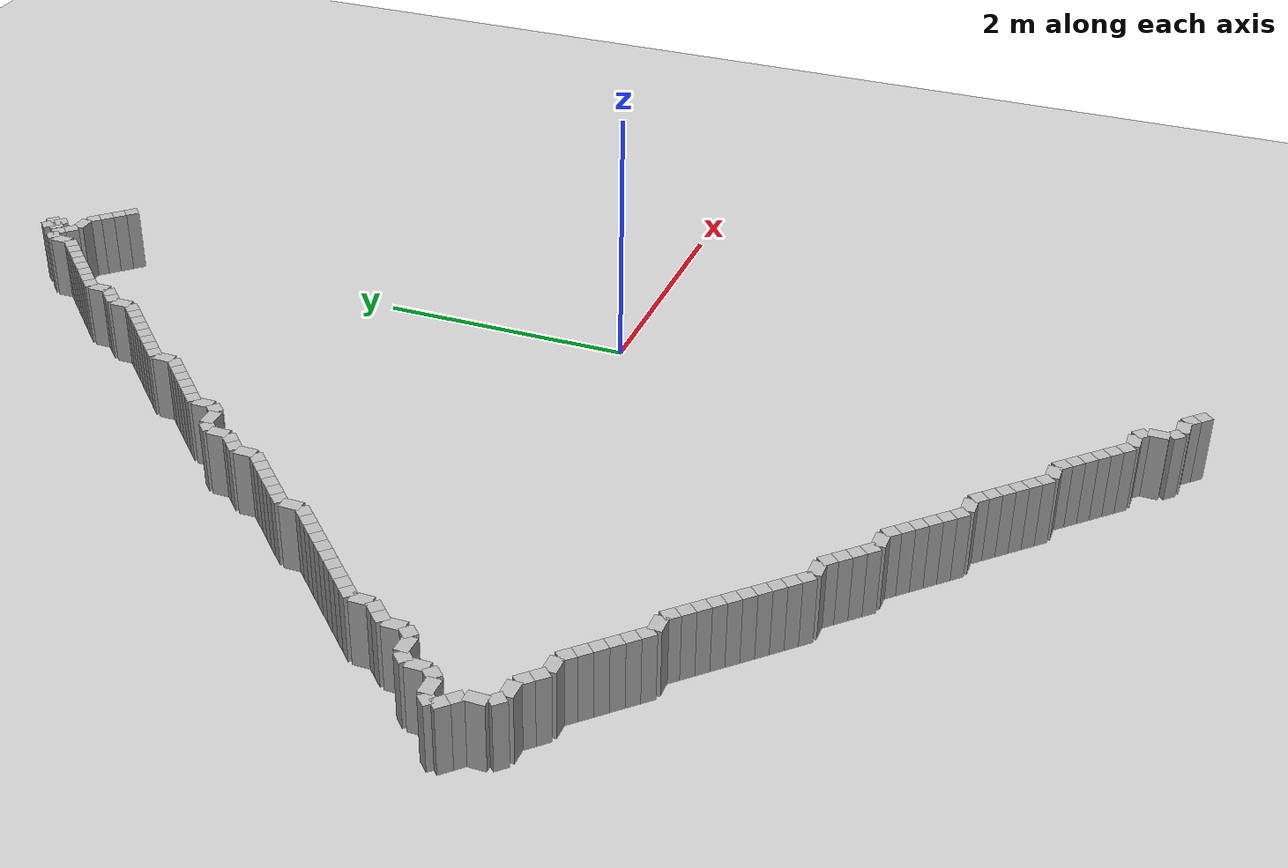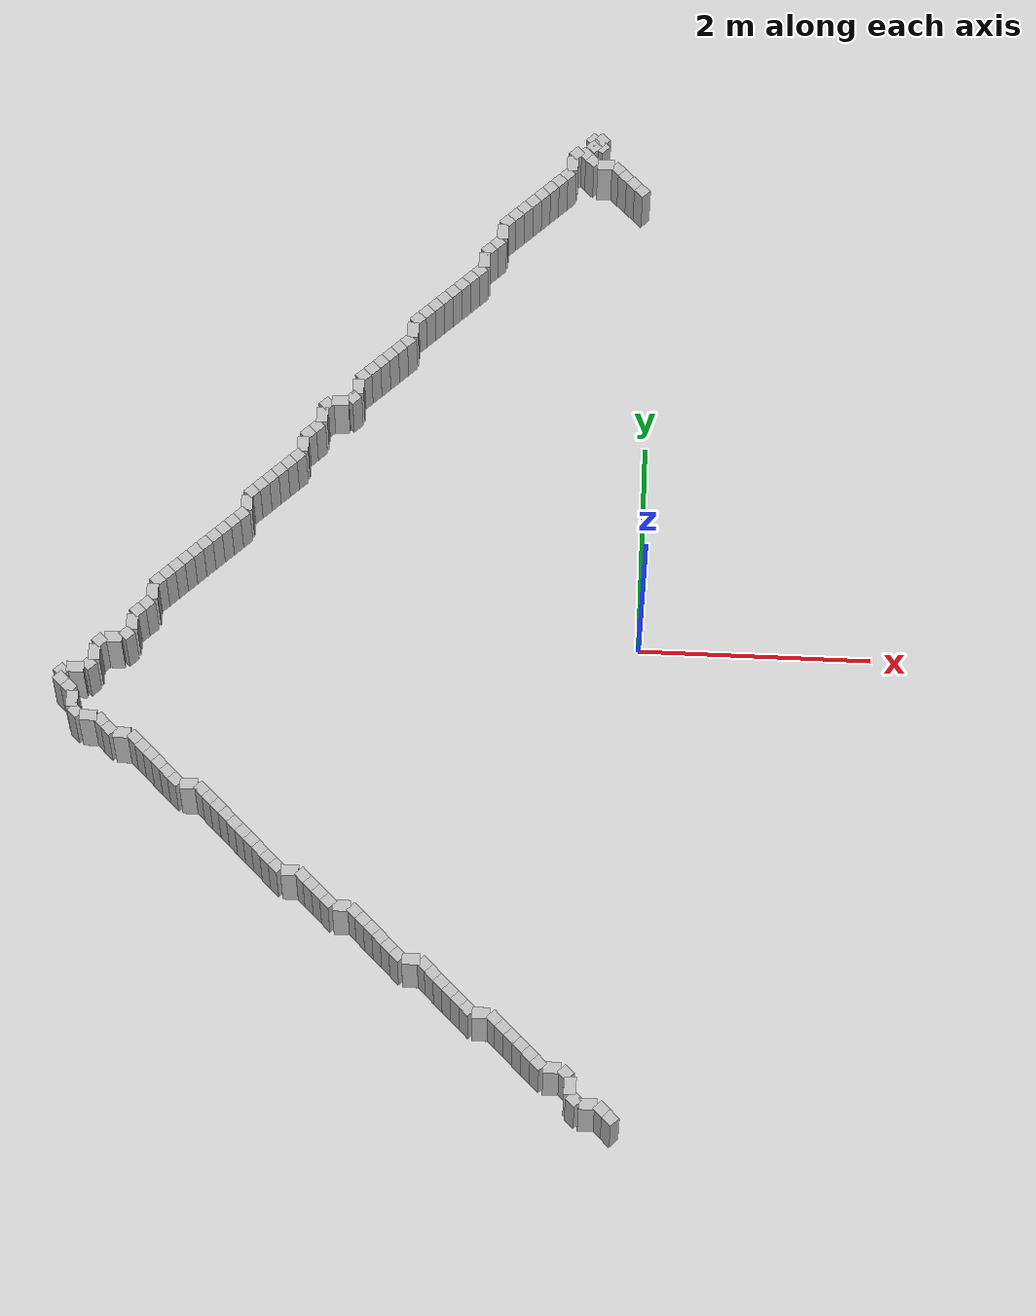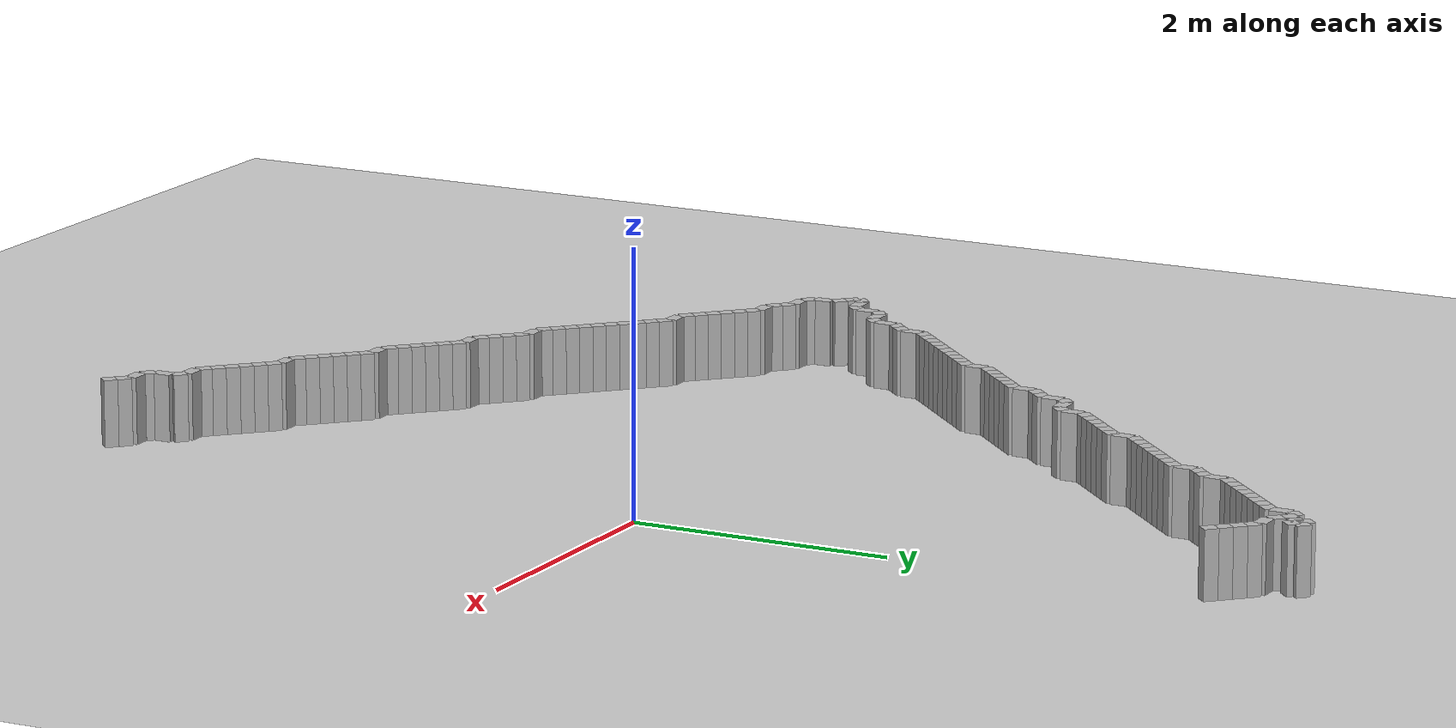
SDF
<sdf version="1.6">
 <world name="default">
  <include><uri>model://ground_plane</uri></include>
  <include><uri>model://sun</uri></include>
  <model name="wall_7">
   <static>true</static>
   <pose>-0.1125 -4.4625 0 0 0 2.3562</pose>
   <link name="link">
    <visual name="vis"><geometry><box><size>0.1061 0.10 1.00</size></box></geometry></visual>
    <collision name="col"><geometry><box><size>0.1061 0.10 1.00</size></box></geometry></collision>
   </link>
  </model>
  <model name="wall_8">
   <static>true</static>
   <pose>-0.1875 -4.3875 0 0 0 2.3562</pose>
   <link name="link">
    <visual name="vis"><geometry><box><size>0.1061 0.10 1.00</size></box></geometry></visual>
    <collision name="col"><geometry><box><size>0.1061 0.10 1.00</size></box></geometry></collision>
   </link>
  </model>
  <model name="wall_9">
   <static>true</static>
   <pose>-0.3000 -4.3500 0 0 0 3.1416</pose>
   <link name="link">
    <visual name="vis"><geometry><box><size>0.1500 0.10 1.00</size></box></geometry></visual>
    <collision name="col"><geometry><box><size>0.1500 0.10 1.00</size></box></geometry></collision>
   </link>
  </model>
  <model name="wall_10">
   <static>true</static>
   <pose>-0.4125 -4.3125 0 0 0 2.3562</pose>
   <link name="link">
    <visual name="vis"><geometry><box><size>0.1061 0.10 1.00</size></box></geometry></visual>
    <collision name="col"><geometry><box><size>0.1061 0.10 1.00</size></box></geometry></collision>
   </link>
  </model>
  <model name="wall_11">
   <static>true</static>
   <pose>-0.4500 -4.2000 0 0 0 1.5708</pose>
   <link name="link">
    <visual name="vis"><geometry><box><size>0.1500 0.10 1.00</size></box></geometry></visual>
    <collision name="col"><geometry><box><size>0.1500 0.10 1.00</size></box></geometry></collision>
   </link>
  </model>
  <model name="wall_12">
   <static>true</static>
   <pose>-0.4875 -4.0875 0 0 0 2.3562</pose>
   <link name="link">
    <visual name="vis"><geometry><box><size>0.1061 0.10 1.00</size></box></geometry></visual>
    <collision name="col"><geometry><box><size>0.1061 0.10 1.00</size></box></geometry></collision>
   </link>
  </model>
  <model name="wall_13">
   <static>true</static>
   <pose>-0.6000 -4.0500 0 0 0 3.1416</pose>
   <link name="link">
    <visual name="vis"><geometry><box><size>0.1500 0.10 1.00</size></box></geometry></visual>
    <collision name="col"><geometry><box><size>0.1500 0.10 1.00</size></box></geometry></collision>
   </link>
  </model>
  <model name="wall_14">
   <static>true</static>
   <pose>-0.7125 -4.0125 0 0 0 2.3562</pose>
   <link name="link">
    <visual name="vis"><geometry><box><size>0.1061 0.10 1.00</size></box></geometry></visual>
    <collision name="col"><geometry><box><size>0.1061 0.10 1.00</size></box></geometry></collision>
   </link>
  </model>
  <model name="wall_15">
   <static>true</static>
   <pose>-0.7875 -3.9375 0 0 0 2.3562</pose>
   <link name="link">
    <visual name="vis"><geometry><box><size>0.1061 0.10 1.00</size></box></geometry></visual>
    <collision name="col"><geometry><box><size>0.1061 0.10 1.00</size></box></geometry></collision>
   </link>
  </model>
  <model name="wall_16">
   <static>true</static>
   <pose>-0.8625 -3.8625 0 0 0 2.3562</pose>
   <link name="link">
    <visual name="vis"><geometry><box><size>0.1061 0.10 1.00</size></box></geometry></visual>
    <collision name="col"><geometry><box><size>0.1061 0.10 1.00</size></box></geometry></collision>
   </link>
  </model>
  <model name="wall_17">
   <static>true</static>
   <pose>-0.9375 -3.7875 0 0 0 2.3562</pose>
   <link name="link">
    <visual name="vis"><geometry><box><size>0.1061 0.10 1.00</size></box></geometry></visual>
    <collision name="col"><geometry><box><size>0.1061 0.10 1.00</size></box></geometry></collision>
   </link>
  </model>
  <model name="wall_18">
   <static>true</static>
   <pose>-1.0125 -3.7125 0 0 0 2.3562</pose>
   <link name="link">
    <visual name="vis"><geometry><box><size>0.1061 0.10 1.00</size></box></geometry></visual>
    <collision name="col"><geometry><box><size>0.1061 0.10 1.00</size></box></geometry></collision>
   </link>
  </model>
  <model name="wall_19">
   <static>true</static>
   <pose>-1.0875 -3.6375 0 0 0 2.3562</pose>
   <link name="link">
    <visual name="vis"><geometry><box><size>0.1061 0.10 1.00</size></box></geometry></visual>
    <collision name="col"><geometry><box><size>0.1061 0.10 1.00</size></box></geometry></collision>
   </link>
  </model>
  <model name="wall_20">
   <static>true</static>
   <pose>-1.2000 -3.6000 0 0 0 3.1416</pose>
   <link name="link">
    <visual name="vis"><geometry><box><size>0.1500 0.10 1.00</size></box></geometry></visual>
    <collision name="col"><geometry><box><size>0.1500 0.10 1.00</size></box></geometry></collision>
   </link>
  </model>
  <model name="wall_21">
   <static>true</static>
   <pose>-1.3125 -3.5625 0 0 0 2.3562</pose>
   <link name="link">
    <visual name="vis"><geometry><box><size>0.1061 0.10 1.00</size></box></geometry></visual>
    <collision name="col"><geometry><box><size>0.1061 0.10 1.00</size></box></geometry></collision>
   </link>
  </model>
  <model name="wall_22">
   <static>true</static>
   <pose>-1.3875 -3.4875 0 0 0 2.3562</pose>
   <link name="link">
    <visual name="vis"><geometry><box><size>0.1061 0.10 1.00</size></box></geometry></visual>
    <collision name="col"><geometry><box><size>0.1061 0.10 1.00</size></box></geometry></collision>
   </link>
  </model>
  <model name="wall_23">
   <static>true</static>
   <pose>-1.4625 -3.4125 0 0 0 2.3562</pose>
   <link name="link">
    <visual name="vis"><geometry><box><size>0.1061 0.10 1.00</size></box></geometry></visual>
    <collision name="col"><geometry><box><size>0.1061 0.10 1.00</size></box></geometry></collision>
   </link>
  </model>
  <model name="wall_24">
   <static>true</static>
   <pose>-1.5375 -3.3375 0 0 0 2.3562</pose>
   <link name="link">
    <visual name="vis"><geometry><box><size>0.1061 0.10 1.00</size></box></geometry></visual>
    <collision name="col"><geometry><box><size>0.1061 0.10 1.00</size></box></geometry></collision>
   </link>
  </model>
  <model name="wall_25">
   <static>true</static>
   <pose>-1.6125 -3.2625 0 0 0 2.3562</pose>
   <link name="link">
    <visual name="vis"><geometry><box><size>0.1061 0.10 1.00</size></box></geometry></visual>
    <collision name="col"><geometry><box><size>0.1061 0.10 1.00</size></box></geometry></collision>
   </link>
  </model>
  <model name="wall_26">
   <static>true</static>
   <pose>-1.6875 -3.1875 0 0 0 2.3562</pose>
   <link name="link">
    <visual name="vis"><geometry><box><size>0.1061 0.10 1.00</size></box></geometry></visual>
    <collision name="col"><geometry><box><size>0.1061 0.10 1.00</size></box></geometry></collision>
   </link>
  </model>
  <model name="wall_27">
   <static>true</static>
   <pose>-1.8000 -3.1500 0 0 0 3.1416</pose>
   <link name="link">
    <visual name="vis"><geometry><box><size>0.1500 0.10 1.00</size></box></geometry></visual>
    <collision name="col"><geometry><box><size>0.1500 0.10 1.00</size></box></geometry></collision>
   </link>
  </model>
  <model name="wall_28">
   <static>true</static>
   <pose>-1.9125 -3.1125 0 0 0 2.3562</pose>
   <link name="link">
    <visual name="vis"><geometry><box><size>0.1061 0.10 1.00</size></box></geometry></visual>
    <collision name="col"><geometry><box><size>0.1061 0.10 1.00</size></box></geometry></collision>
   </link>
  </model>
  <model name="wall_29">
   <static>true</static>
   <pose>-1.9875 -3.0375 0 0 0 2.3562</pose>
   <link name="link">
    <visual name="vis"><geometry><box><size>0.1061 0.10 1.00</size></box></geometry></visual>
    <collision name="col"><geometry><box><size>0.1061 0.10 1.00</size></box></geometry></collision>
   </link>
  </model>
  <model name="wall_30">
   <static>true</static>
   <pose>-2.0625 -2.9625 0 0 0 2.3562</pose>
   <link name="link">
    <visual name="vis"><geometry><box><size>0.1061 0.10 1.00</size></box></geometry></visual>
    <collision name="col"><geometry><box><size>0.1061 0.10 1.00</size></box></geometry></collision>
   </link>
  </model>
  <model name="wall_31">
   <static>true</static>
   <pose>-2.1375 -2.8875 0 0 0 2.3562</pose>
   <link name="link">
    <visual name="vis"><geometry><box><size>0.1061 0.10 1.00</size></box></geometry></visual>
    <collision name="col"><geometry><box><size>0.1061 0.10 1.00</size></box></geometry></collision>
   </link>
  </model>
  <model name="wall_32">
   <static>true</static>
   <pose>-2.2125 -2.8125 0 0 0 2.3562</pose>
   <link name="link">
    <visual name="vis"><geometry><box><size>0.1061 0.10 1.00</size></box></geometry></visual>
    <collision name="col"><geometry><box><size>0.1061 0.10 1.00</size></box></geometry></collision>
   </link>
  </model>
  <model name="wall_33">
   <static>true</static>
   <pose>-2.2875 -2.7375 0 0 0 2.3562</pose>
   <link name="link">
    <visual name="vis"><geometry><box><size>0.1061 0.10 1.00</size></box></geometry></visual>
    <collision name="col"><geometry><box><size>0.1061 0.10 1.00</size></box></geometry></collision>
   </link>
  </model>
  <model name="wall_34">
   <static>true</static>
   <pose>-2.4000 -2.7000 0 0 0 3.1416</pose>
   <link name="link">
    <visual name="vis"><geometry><box><size>0.1500 0.10 1.00</size></box></geometry></visual>
    <collision name="col"><geometry><box><size>0.1500 0.10 1.00</size></box></geometry></collision>
   </link>
  </model>
  <model name="wall_35">
   <static>true</static>
   <pose>-2.5125 -2.6625 0 0 0 2.3562</pose>
   <link name="link">
    <visual name="vis"><geometry><box><size>0.1061 0.10 1.00</size></box></geometry></visual>
    <collision name="col"><geometry><box><size>0.1061 0.10 1.00</size></box></geometry></collision>
   </link>
  </model>
  <model name="wall_36">
   <static>true</static>
   <pose>-2.5875 -2.5875 0 0 0 2.3562</pose>
   <link name="link">
    <visual name="vis"><geometry><box><size>0.1061 0.10 1.00</size></box></geometry></visual>
    <collision name="col"><geometry><box><size>0.1061 0.10 1.00</size></box></geometry></collision>
   </link>
  </model>
  <model name="wall_37">
   <static>true</static>
   <pose>-2.6625 -2.5125 0 0 0 2.3562</pose>
   <link name="link">
    <visual name="vis"><geometry><box><size>0.1061 0.10 1.00</size></box></geometry></visual>
    <collision name="col"><geometry><box><size>0.1061 0.10 1.00</size></box></geometry></collision>
   </link>
  </model>
  <model name="wall_38">
   <static>true</static>
   <pose>-2.7375 -2.4375 0 0 0 2.3562</pose>
   <link name="link">
    <visual name="vis"><geometry><box><size>0.1061 0.10 1.00</size></box></geometry></visual>
    <collision name="col"><geometry><box><size>0.1061 0.10 1.00</size></box></geometry></collision>
   </link>
  </model>
  <model name="wall_39">
   <static>true</static>
   <pose>-2.8500 -2.4000 0 0 0 3.1416</pose>
   <link name="link">
    <visual name="vis"><geometry><box><size>0.1500 0.10 1.00</size></box></geometry></visual>
    <collision name="col"><geometry><box><size>0.1500 0.10 1.00</size></box></geometry></collision>
   </link>
  </model>
  <model name="wall_40">
   <static>true</static>
   <pose>-2.9625 -2.3625 0 0 0 2.3562</pose>
   <link name="link">
    <visual name="vis"><geometry><box><size>0.1061 0.10 1.00</size></box></geometry></visual>
    <collision name="col"><geometry><box><size>0.1061 0.10 1.00</size></box></geometry></collision>
   </link>
  </model>
  <model name="wall_41">
   <static>true</static>
   <pose>-3.0375 -2.2875 0 0 0 2.3562</pose>
   <link name="link">
    <visual name="vis"><geometry><box><size>0.1061 0.10 1.00</size></box></geometry></visual>
    <collision name="col"><geometry><box><size>0.1061 0.10 1.00</size></box></geometry></collision>
   </link>
  </model>
  <model name="wall_42">
   <static>true</static>
   <pose>-3.1125 -2.2125 0 0 0 2.3562</pose>
   <link name="link">
    <visual name="vis"><geometry><box><size>0.1061 0.10 1.00</size></box></geometry></visual>
    <collision name="col"><geometry><box><size>0.1061 0.10 1.00</size></box></geometry></collision>
   </link>
  </model>
  <model name="wall_43">
   <static>true</static>
   <pose>-3.1875 -2.1375 0 0 0 2.3562</pose>
   <link name="link">
    <visual name="vis"><geometry><box><size>0.1061 0.10 1.00</size></box></geometry></visual>
    <collision name="col"><geometry><box><size>0.1061 0.10 1.00</size></box></geometry></collision>
   </link>
  </model>
  <model name="wall_44">
   <static>true</static>
   <pose>-3.2625 -2.0625 0 0 0 2.3562</pose>
   <link name="link">
    <visual name="vis"><geometry><box><size>0.1061 0.10 1.00</size></box></geometry></visual>
    <collision name="col"><geometry><box><size>0.1061 0.10 1.00</size></box></geometry></collision>
   </link>
  </model>
  <model name="wall_45">
   <static>true</static>
   <pose>-3.3375 -1.9875 0 0 0 2.3562</pose>
   <link name="link">
    <visual name="vis"><geometry><box><size>0.1061 0.10 1.00</size></box></geometry></visual>
    <collision name="col"><geometry><box><size>0.1061 0.10 1.00</size></box></geometry></collision>
   </link>
  </model>
  <model name="wall_46">
   <static>true</static>
   <pose>-3.4125 -1.9125 0 0 0 2.3562</pose>
   <link name="link">
    <visual name="vis"><geometry><box><size>0.1061 0.10 1.00</size></box></geometry></visual>
    <collision name="col"><geometry><box><size>0.1061 0.10 1.00</size></box></geometry></collision>
   </link>
  </model>
  <model name="wall_47">
   <static>true</static>
   <pose>-3.4875 -1.8375 0 0 0 2.3562</pose>
   <link name="link">
    <visual name="vis"><geometry><box><size>0.1061 0.10 1.00</size></box></geometry></visual>
    <collision name="col"><geometry><box><size>0.1061 0.10 1.00</size></box></geometry></collision>
   </link>
  </model>
  <model name="wall_48">
   <static>true</static>
   <pose>-3.5625 -1.7625 0 0 0 2.3562</pose>
   <link name="link">
    <visual name="vis"><geometry><box><size>0.1061 0.10 1.00</size></box></geometry></visual>
    <collision name="col"><geometry><box><size>0.1061 0.10 1.00</size></box></geometry></collision>
   </link>
  </model>
  <model name="wall_49">
   <static>true</static>
   <pose>-3.6375 -1.6875 0 0 0 2.3562</pose>
   <link name="link">
    <visual name="vis"><geometry><box><size>0.1061 0.10 1.00</size></box></geometry></visual>
    <collision name="col"><geometry><box><size>0.1061 0.10 1.00</size></box></geometry></collision>
   </link>
  </model>
  <model name="wall_50">
   <static>true</static>
   <pose>-3.7500 -1.6500 0 0 0 3.1416</pose>
   <link name="link">
    <visual name="vis"><geometry><box><size>0.1500 0.10 1.00</size></box></geometry></visual>
    <collision name="col"><geometry><box><size>0.1500 0.10 1.00</size></box></geometry></collision>
   </link>
  </model>
  <model name="wall_51">
   <static>true</static>
   <pose>-3.8625 -1.6125 0 0 0 2.3562</pose>
   <link name="link">
    <visual name="vis"><geometry><box><size>0.1061 0.10 1.00</size></box></geometry></visual>
    <collision name="col"><geometry><box><size>0.1061 0.10 1.00</size></box></geometry></collision>
   </link>
  </model>
  <model name="wall_52">
   <static>true</static>
   <pose>-3.9375 -1.5375 0 0 0 2.3562</pose>
   <link name="link">
    <visual name="vis"><geometry><box><size>0.1061 0.10 1.00</size></box></geometry></visual>
    <collision name="col"><geometry><box><size>0.1061 0.10 1.00</size></box></geometry></collision>
   </link>
  </model>
  <model name="wall_53">
   <static>true</static>
   <pose>-4.0125 -1.4625 0 0 0 2.3562</pose>
   <link name="link">
    <visual name="vis"><geometry><box><size>0.1061 0.10 1.00</size></box></geometry></visual>
    <collision name="col"><geometry><box><size>0.1061 0.10 1.00</size></box></geometry></collision>
   </link>
  </model>
  <model name="wall_54">
   <static>true</static>
   <pose>-4.0875 -1.3875 0 0 0 2.3562</pose>
   <link name="link">
    <visual name="vis"><geometry><box><size>0.1061 0.10 1.00</size></box></geometry></visual>
    <collision name="col"><geometry><box><size>0.1061 0.10 1.00</size></box></geometry></collision>
   </link>
  </model>
  <model name="wall_55">
   <static>true</static>
   <pose>-4.1625 -1.3125 0 0 0 2.3562</pose>
   <link name="link">
    <visual name="vis"><geometry><box><size>0.1061 0.10 1.00</size></box></geometry></visual>
    <collision name="col"><geometry><box><size>0.1061 0.10 1.00</size></box></geometry></collision>
   </link>
  </model>
  <model name="wall_56">
   <static>true</static>
   <pose>-4.2375 -1.2375 0 0 0 2.3562</pose>
   <link name="link">
    <visual name="vis"><geometry><box><size>0.1061 0.10 1.00</size></box></geometry></visual>
    <collision name="col"><geometry><box><size>0.1061 0.10 1.00</size></box></geometry></collision>
   </link>
  </model>
  <model name="wall_57">
   <static>true</static>
   <pose>-4.3500 -1.2000 0 0 0 3.1416</pose>
   <link name="link">
    <visual name="vis"><geometry><box><size>0.1500 0.10 1.00</size></box></geometry></visual>
    <collision name="col"><geometry><box><size>0.1500 0.10 1.00</size></box></geometry></collision>
   </link>
  </model>
  <model name="wall_58">
   <static>true</static>
   <pose>-4.4625 -1.1625 0 0 0 2.3562</pose>
   <link name="link">
    <visual name="vis"><geometry><box><size>0.1061 0.10 1.00</size></box></geometry></visual>
    <collision name="col"><geometry><box><size>0.1061 0.10 1.00</size></box></geometry></collision>
   </link>
  </model>
  <model name="wall_59">
   <static>true</static>
   <pose>-4.5375 -1.0875 0 0 0 2.3562</pose>
   <link name="link">
    <visual name="vis"><geometry><box><size>0.1061 0.10 1.00</size></box></geometry></visual>
    <collision name="col"><geometry><box><size>0.1061 0.10 1.00</size></box></geometry></collision>
   </link>
  </model>
  <model name="wall_60">
   <static>true</static>
   <pose>-4.6500 -1.0500 0 0 0 3.1416</pose>
   <link name="link">
    <visual name="vis"><geometry><box><size>0.1500 0.10 1.00</size></box></geometry></visual>
    <collision name="col"><geometry><box><size>0.1500 0.10 1.00</size></box></geometry></collision>
   </link>
  </model>
  <model name="wall_61">
   <static>true</static>
   <pose>-4.7625 -1.0125 0 0 0 2.3562</pose>
   <link name="link">
    <visual name="vis"><geometry><box><size>0.1061 0.10 1.00</size></box></geometry></visual>
    <collision name="col"><geometry><box><size>0.1061 0.10 1.00</size></box></geometry></collision>
   </link>
  </model>
  <model name="wall_62">
   <static>true</static>
   <pose>-4.8000 -0.9000 0 0 0 1.5708</pose>
   <link name="link">
    <visual name="vis"><geometry><box><size>0.1500 0.10 1.00</size></box></geometry></visual>
    <collision name="col"><geometry><box><size>0.1500 0.10 1.00</size></box></geometry></collision>
   </link>
  </model>
  <model name="wall_63">
   <static>true</static>
   <pose>-4.8375 -0.7875 0 0 0 2.3562</pose>
   <link name="link">
    <visual name="vis"><geometry><box><size>0.1061 0.10 1.00</size></box></geometry></visual>
    <collision name="col"><geometry><box><size>0.1061 0.10 1.00</size></box></geometry></collision>
   </link>
  </model>
  <model name="wall_64">
   <static>true</static>
   <pose>-4.9125 -0.7125 0 0 0 2.3562</pose>
   <link name="link">
    <visual name="vis"><geometry><box><size>0.1061 0.10 1.00</size></box></geometry></visual>
    <collision name="col"><geometry><box><size>0.1061 0.10 1.00</size></box></geometry></collision>
   </link>
  </model>
  <model name="wall_65">
   <static>true</static>
   <pose>-4.9125 -0.6375 0 0 0 0.7854</pose>
   <link name="link">
    <visual name="vis"><geometry><box><size>0.1061 0.10 1.00</size></box></geometry></visual>
    <collision name="col"><geometry><box><size>0.1061 0.10 1.00</size></box></geometry></collision>
   </link>
  </model>
  <model name="wall_66">
   <static>true</static>
   <pose>-4.8000 -0.6000 0 0 0 0.0000</pose>
   <link name="link">
    <visual name="vis"><geometry><box><size>0.1500 0.10 1.00</size></box></geometry></visual>
    <collision name="col"><geometry><box><size>0.1500 0.10 1.00</size></box></geometry></collision>
   </link>
  </model>
  <model name="wall_67">
   <static>true</static>
   <pose>-4.6875 -0.5625 0 0 0 0.7854</pose>
   <link name="link">
    <visual name="vis"><geometry><box><size>0.1061 0.10 1.00</size></box></geometry></visual>
    <collision name="col"><geometry><box><size>0.1061 0.10 1.00</size></box></geometry></collision>
   </link>
  </model>
  <model name="wall_68">
   <static>true</static>
   <pose>-4.6500 -0.4500 0 0 0 1.5708</pose>
   <link name="link">
    <visual name="vis"><geometry><box><size>0.1500 0.10 1.00</size></box></geometry></visual>
    <collision name="col"><geometry><box><size>0.1500 0.10 1.00</size></box></geometry></collision>
   </link>
  </model>
  <model name="wall_69">
   <static>true</static>
   <pose>-4.6125 -0.3375 0 0 0 0.7854</pose>
   <link name="link">
    <visual name="vis"><geometry><box><size>0.1061 0.10 1.00</size></box></geometry></visual>
    <collision name="col"><geometry><box><size>0.1061 0.10 1.00</size></box></geometry></collision>
   </link>
  </model>
  <model name="wall_70">
   <static>true</static>
   <pose>-4.5000 -0.3000 0 0 0 0.0000</pose>
   <link name="link">
    <visual name="vis"><geometry><box><size>0.1500 0.10 1.00</size></box></geometry></visual>
    <collision name="col"><geometry><box><size>0.1500 0.10 1.00</size></box></geometry></collision>
   </link>
  </model>
  <model name="wall_71">
   <static>true</static>
   <pose>-4.3875 -0.2625 0 0 0 0.7854</pose>
   <link name="link">
    <visual name="vis"><geometry><box><size>0.1061 0.10 1.00</size></box></geometry></visual>
    <collision name="col"><geometry><box><size>0.1061 0.10 1.00</size></box></geometry></collision>
   </link>
  </model>
  <model name="wall_72">
   <static>true</static>
   <pose>-4.3500 -0.1500 0 0 0 1.5708</pose>
   <link name="link">
    <visual name="vis"><geometry><box><size>0.1500 0.10 1.00</size></box></geometry></visual>
    <collision name="col"><geometry><box><size>0.1500 0.10 1.00</size></box></geometry></collision>
   </link>
  </model>
  <model name="wall_73">
   <static>true</static>
   <pose>-4.3125 -0.0375 0 0 0 0.7854</pose>
   <link name="link">
    <visual name="vis"><geometry><box><size>0.1061 0.10 1.00</size></box></geometry></visual>
    <collision name="col"><geometry><box><size>0.1061 0.10 1.00</size></box></geometry></collision>
   </link>
  </model>
  <model name="wall_74">
   <static>true</static>
   <pose>-4.2375 0.0375 0 0 0 0.7854</pose>
   <link name="link">
    <visual name="vis"><geometry><box><size>0.1061 0.10 1.00</size></box></geometry></visual>
    <collision name="col"><geometry><box><size>0.1061 0.10 1.00</size></box></geometry></collision>
   </link>
  </model>
  <model name="wall_75">
   <static>true</static>
   <pose>-4.2000 0.1500 0 0 0 1.5708</pose>
   <link name="link">
    <visual name="vis"><geometry><box><size>0.1500 0.10 1.00</size></box></geometry></visual>
    <collision name="col"><geometry><box><size>0.1500 0.10 1.00</size></box></geometry></collision>
   </link>
  </model>
  <model name="wall_76">
   <static>true</static>
   <pose>-4.1625 0.2625 0 0 0 0.7854</pose>
   <link name="link">
    <visual name="vis"><geometry><box><size>0.1061 0.10 1.00</size></box></geometry></visual>
    <collision name="col"><geometry><box><size>0.1061 0.10 1.00</size></box></geometry></collision>
   </link>
  </model>
  <model name="wall_77">
   <static>true</static>
   <pose>-4.0875 0.3375 0 0 0 0.7854</pose>
   <link name="link">
    <visual name="vis"><geometry><box><size>0.1061 0.10 1.00</size></box></geometry></visual>
    <collision name="col"><geometry><box><size>0.1061 0.10 1.00</size></box></geometry></collision>
   </link>
  </model>
  <model name="wall_78">
   <static>true</static>
   <pose>-4.0125 0.4125 0 0 0 0.7854</pose>
   <link name="link">
    <visual name="vis"><geometry><box><size>0.1061 0.10 1.00</size></box></geometry></visual>
    <collision name="col"><geometry><box><size>0.1061 0.10 1.00</size></box></geometry></collision>
   </link>
  </model>
  <model name="wall_79">
   <static>true</static>
   <pose>-3.9375 0.4875 0 0 0 0.7854</pose>
   <link name="link">
    <visual name="vis"><geometry><box><size>0.1061 0.10 1.00</size></box></geometry></visual>
    <collision name="col"><geometry><box><size>0.1061 0.10 1.00</size></box></geometry></collision>
   </link>
  </model>
  <model name="wall_80">
   <static>true</static>
   <pose>-3.8625 0.5625 0 0 0 0.7854</pose>
   <link name="link">
    <visual name="vis"><geometry><box><size>0.1061 0.10 1.00</size></box></geometry></visual>
    <collision name="col"><geometry><box><size>0.1061 0.10 1.00</size></box></geometry></collision>
   </link>
  </model>
  <model name="wall_81">
   <static>true</static>
   <pose>-3.7875 0.6375 0 0 0 0.7854</pose>
   <link name="link">
    <visual name="vis"><geometry><box><size>0.1061 0.10 1.00</size></box></geometry></visual>
    <collision name="col"><geometry><box><size>0.1061 0.10 1.00</size></box></geometry></collision>
   </link>
  </model>
  <model name="wall_82">
   <static>true</static>
   <pose>-3.7125 0.7125 0 0 0 0.7854</pose>
   <link name="link">
    <visual name="vis"><geometry><box><size>0.1061 0.10 1.00</size></box></geometry></visual>
    <collision name="col"><geometry><box><size>0.1061 0.10 1.00</size></box></geometry></collision>
   </link>
  </model>
  <model name="wall_83">
   <static>true</static>
   <pose>-3.6375 0.7875 0 0 0 0.7854</pose>
   <link name="link">
    <visual name="vis"><geometry><box><size>0.1061 0.10 1.00</size></box></geometry></visual>
    <collision name="col"><geometry><box><size>0.1061 0.10 1.00</size></box></geometry></collision>
   </link>
  </model>
  <model name="wall_84">
   <static>true</static>
   <pose>-3.5625 0.8625 0 0 0 0.7854</pose>
   <link name="link">
    <visual name="vis"><geometry><box><size>0.1061 0.10 1.00</size></box></geometry></visual>
    <collision name="col"><geometry><box><size>0.1061 0.10 1.00</size></box></geometry></collision>
   </link>
  </model>
  <model name="wall_85">
   <static>true</static>
   <pose>-3.4875 0.9375 0 0 0 0.7854</pose>
   <link name="link">
    <visual name="vis"><geometry><box><size>0.1061 0.10 1.00</size></box></geometry></visual>
    <collision name="col"><geometry><box><size>0.1061 0.10 1.00</size></box></geometry></collision>
   </link>
  </model>
  <model name="wall_86">
   <static>true</static>
   <pose>-3.4500 1.0500 0 0 0 1.5708</pose>
   <link name="link">
    <visual name="vis"><geometry><box><size>0.1500 0.10 1.00</size></box></geometry></visual>
    <collision name="col"><geometry><box><size>0.1500 0.10 1.00</size></box></geometry></collision>
   </link>
  </model>
  <model name="wall_87">
   <static>true</static>
   <pose>-3.4125 1.1625 0 0 0 0.7854</pose>
   <link name="link">
    <visual name="vis"><geometry><box><size>0.1061 0.10 1.00</size></box></geometry></visual>
    <collision name="col"><geometry><box><size>0.1061 0.10 1.00</size></box></geometry></collision>
   </link>
  </model>
  <model name="wall_88">
   <static>true</static>
   <pose>-3.3375 1.2375 0 0 0 0.7854</pose>
   <link name="link">
    <visual name="vis"><geometry><box><size>0.1061 0.10 1.00</size></box></geometry></visual>
    <collision name="col"><geometry><box><size>0.1061 0.10 1.00</size></box></geometry></collision>
   </link>
  </model>
  <model name="wall_89">
   <static>true</static>
   <pose>-3.2625 1.3125 0 0 0 0.7854</pose>
   <link name="link">
    <visual name="vis"><geometry><box><size>0.1061 0.10 1.00</size></box></geometry></visual>
    <collision name="col"><geometry><box><size>0.1061 0.10 1.00</size></box></geometry></collision>
   </link>
  </model>
  <model name="wall_90">
   <static>true</static>
   <pose>-3.1875 1.3875 0 0 0 0.7854</pose>
   <link name="link">
    <visual name="vis"><geometry><box><size>0.1061 0.10 1.00</size></box></geometry></visual>
    <collision name="col"><geometry><box><size>0.1061 0.10 1.00</size></box></geometry></collision>
   </link>
  </model>
  <model name="wall_91">
   <static>true</static>
   <pose>-3.1125 1.4625 0 0 0 0.7854</pose>
   <link name="link">
    <visual name="vis"><geometry><box><size>0.1061 0.10 1.00</size></box></geometry></visual>
    <collision name="col"><geometry><box><size>0.1061 0.10 1.00</size></box></geometry></collision>
   </link>
  </model>
  <model name="wall_92">
   <static>true</static>
   <pose>-3.0375 1.5375 0 0 0 0.7854</pose>
   <link name="link">
    <visual name="vis"><geometry><box><size>0.1061 0.10 1.00</size></box></geometry></visual>
    <collision name="col"><geometry><box><size>0.1061 0.10 1.00</size></box></geometry></collision>
   </link>
  </model>
  <model name="wall_93">
   <static>true</static>
   <pose>-3.0000 1.6500 0 0 0 1.5708</pose>
   <link name="link">
    <visual name="vis"><geometry><box><size>0.1500 0.10 1.00</size></box></geometry></visual>
    <collision name="col"><geometry><box><size>0.1500 0.10 1.00</size></box></geometry></collision>
   </link>
  </model>
  <model name="wall_94">
   <static>true</static>
   <pose>-2.9625 1.7625 0 0 0 0.7854</pose>
   <link name="link">
    <visual name="vis"><geometry><box><size>0.1061 0.10 1.00</size></box></geometry></visual>
    <collision name="col"><geometry><box><size>0.1061 0.10 1.00</size></box></geometry></collision>
   </link>
  </model>
  <model name="wall_95">
   <static>true</static>
   <pose>-2.8875 1.8375 0 0 0 0.7854</pose>
   <link name="link">
    <visual name="vis"><geometry><box><size>0.1061 0.10 1.00</size></box></geometry></visual>
    <collision name="col"><geometry><box><size>0.1061 0.10 1.00</size></box></geometry></collision>
   </link>
  </model>
  <model name="wall_96">
   <static>true</static>
   <pose>-2.8500 1.9500 0 0 0 1.5708</pose>
   <link name="link">
    <visual name="vis"><geometry><box><size>0.1500 0.10 1.00</size></box></geometry></visual>
    <collision name="col"><geometry><box><size>0.1500 0.10 1.00</size></box></geometry></collision>
   </link>
  </model>
  <model name="wall_97">
   <static>true</static>
   <pose>-2.8125 2.0625 0 0 0 0.7854</pose>
   <link name="link">
    <visual name="vis"><geometry><box><size>0.1061 0.10 1.00</size></box></geometry></visual>
    <collision name="col"><geometry><box><size>0.1061 0.10 1.00</size></box></geometry></collision>
   </link>
  </model>
  <model name="wall_98">
   <static>true</static>
   <pose>-2.7000 2.1000 0 0 0 0.0000</pose>
   <link name="link">
    <visual name="vis"><geometry><box><size>0.1500 0.10 1.00</size></box></geometry></visual>
    <collision name="col"><geometry><box><size>0.1500 0.10 1.00</size></box></geometry></collision>
   </link>
  </model>
  <model name="wall_99">
   <static>true</static>
   <pose>-2.5875 2.1375 0 0 0 0.7854</pose>
   <link name="link">
    <visual name="vis"><geometry><box><size>0.1061 0.10 1.00</size></box></geometry></visual>
    <collision name="col"><geometry><box><size>0.1061 0.10 1.00</size></box></geometry></collision>
   </link>
  </model>
  <model name="wall_100">
   <static>true</static>
   <pose>-2.5500 2.2500 0 0 0 1.5708</pose>
   <link name="link">
    <visual name="vis"><geometry><box><size>0.1500 0.10 1.00</size></box></geometry></visual>
    <collision name="col"><geometry><box><size>0.1500 0.10 1.00</size></box></geometry></collision>
   </link>
  </model>
  <model name="wall_101">
   <static>true</static>
   <pose>-2.5125 2.3625 0 0 0 0.7854</pose>
   <link name="link">
    <visual name="vis"><geometry><box><size>0.1061 0.10 1.00</size></box></geometry></visual>
    <collision name="col"><geometry><box><size>0.1061 0.10 1.00</size></box></geometry></collision>
   </link>
  </model>
  <model name="wall_102">
   <static>true</static>
   <pose>-2.4375 2.4375 0 0 0 0.7854</pose>
   <link name="link">
    <visual name="vis"><geometry><box><size>0.1061 0.10 1.00</size></box></geometry></visual>
    <collision name="col"><geometry><box><size>0.1061 0.10 1.00</size></box></geometry></collision>
   </link>
  </model>
  <model name="wall_103">
   <static>true</static>
   <pose>-2.3625 2.5125 0 0 0 0.7854</pose>
   <link name="link">
    <visual name="vis"><geometry><box><size>0.1061 0.10 1.00</size></box></geometry></visual>
    <collision name="col"><geometry><box><size>0.1061 0.10 1.00</size></box></geometry></collision>
   </link>
  </model>
  <model name="wall_104">
   <static>true</static>
   <pose>-2.2875 2.5875 0 0 0 0.7854</pose>
   <link name="link">
    <visual name="vis"><geometry><box><size>0.1061 0.10 1.00</size></box></geometry></visual>
    <collision name="col"><geometry><box><size>0.1061 0.10 1.00</size></box></geometry></collision>
   </link>
  </model>
  <model name="wall_105">
   <static>true</static>
   <pose>-2.2125 2.6625 0 0 0 0.7854</pose>
   <link name="link">
    <visual name="vis"><geometry><box><size>0.1061 0.10 1.00</size></box></geometry></visual>
    <collision name="col"><geometry><box><size>0.1061 0.10 1.00</size></box></geometry></collision>
   </link>
  </model>
  <model name="wall_106">
   <static>true</static>
   <pose>-2.1375 2.7375 0 0 0 0.7854</pose>
   <link name="link">
    <visual name="vis"><geometry><box><size>0.1061 0.10 1.00</size></box></geometry></visual>
    <collision name="col"><geometry><box><size>0.1061 0.10 1.00</size></box></geometry></collision>
   </link>
  </model>
  <model name="wall_107">
   <static>true</static>
   <pose>-2.1000 2.8500 0 0 0 1.5708</pose>
   <link name="link">
    <visual name="vis"><geometry><box><size>0.1500 0.10 1.00</size></box></geometry></visual>
    <collision name="col"><geometry><box><size>0.1500 0.10 1.00</size></box></geometry></collision>
   </link>
  </model>
  <model name="wall_108">
   <static>true</static>
   <pose>-2.0625 2.9625 0 0 0 0.7854</pose>
   <link name="link">
    <visual name="vis"><geometry><box><size>0.1061 0.10 1.00</size></box></geometry></visual>
    <collision name="col"><geometry><box><size>0.1061 0.10 1.00</size></box></geometry></collision>
   </link>
  </model>
  <model name="wall_109">
   <static>true</static>
   <pose>-1.9875 3.0375 0 0 0 0.7854</pose>
   <link name="link">
    <visual name="vis"><geometry><box><size>0.1061 0.10 1.00</size></box></geometry></visual>
    <collision name="col"><geometry><box><size>0.1061 0.10 1.00</size></box></geometry></collision>
   </link>
  </model>
  <model name="wall_110">
   <static>true</static>
   <pose>-1.9125 3.1125 0 0 0 0.7854</pose>
   <link name="link">
    <visual name="vis"><geometry><box><size>0.1061 0.10 1.00</size></box></geometry></visual>
    <collision name="col"><geometry><box><size>0.1061 0.10 1.00</size></box></geometry></collision>
   </link>
  </model>
  <model name="wall_111">
   <static>true</static>
   <pose>-1.8375 3.1875 0 0 0 0.7854</pose>
   <link name="link">
    <visual name="vis"><geometry><box><size>0.1061 0.10 1.00</size></box></geometry></visual>
    <collision name="col"><geometry><box><size>0.1061 0.10 1.00</size></box></geometry></collision>
   </link>
  </model>
  <model name="wall_112">
   <static>true</static>
   <pose>-1.7625 3.2625 0 0 0 0.7854</pose>
   <link name="link">
    <visual name="vis"><geometry><box><size>0.1061 0.10 1.00</size></box></geometry></visual>
    <collision name="col"><geometry><box><size>0.1061 0.10 1.00</size></box></geometry></collision>
   </link>
  </model>
  <model name="wall_113">
   <static>true</static>
   <pose>-1.6875 3.3375 0 0 0 0.7854</pose>
   <link name="link">
    <visual name="vis"><geometry><box><size>0.1061 0.10 1.00</size></box></geometry></visual>
    <collision name="col"><geometry><box><size>0.1061 0.10 1.00</size></box></geometry></collision>
   </link>
  </model>
  <model name="wall_114">
   <static>true</static>
   <pose>-1.6125 3.4125 0 0 0 0.7854</pose>
   <link name="link">
    <visual name="vis"><geometry><box><size>0.1061 0.10 1.00</size></box></geometry></visual>
    <collision name="col"><geometry><box><size>0.1061 0.10 1.00</size></box></geometry></collision>
   </link>
  </model>
  <model name="wall_115">
   <static>true</static>
   <pose>-1.5375 3.4875 0 0 0 0.7854</pose>
   <link name="link">
    <visual name="vis"><geometry><box><size>0.1061 0.10 1.00</size></box></geometry></visual>
    <collision name="col"><geometry><box><size>0.1061 0.10 1.00</size></box></geometry></collision>
   </link>
  </model>
  <model name="wall_116">
   <static>true</static>
   <pose>-1.5000 3.6000 0 0 0 1.5708</pose>
   <link name="link">
    <visual name="vis"><geometry><box><size>0.1500 0.10 1.00</size></box></geometry></visual>
    <collision name="col"><geometry><box><size>0.1500 0.10 1.00</size></box></geometry></collision>
   </link>
  </model>
  <model name="wall_117">
   <static>true</static>
   <pose>-1.4625 3.7125 0 0 0 0.7854</pose>
   <link name="link">
    <visual name="vis"><geometry><box><size>0.1061 0.10 1.00</size></box></geometry></visual>
    <collision name="col"><geometry><box><size>0.1061 0.10 1.00</size></box></geometry></collision>
   </link>
  </model>
  <model name="wall_118">
   <static>true</static>
   <pose>-1.3875 3.7875 0 0 0 0.7854</pose>
   <link name="link">
    <visual name="vis"><geometry><box><size>0.1061 0.10 1.00</size></box></geometry></visual>
    <collision name="col"><geometry><box><size>0.1061 0.10 1.00</size></box></geometry></collision>
   </link>
  </model>
  <model name="wall_119">
   <static>true</static>
   <pose>-1.3500 3.9000 0 0 0 1.5708</pose>
   <link name="link">
    <visual name="vis"><geometry><box><size>0.1500 0.10 1.00</size></box></geometry></visual>
    <collision name="col"><geometry><box><size>0.1500 0.10 1.00</size></box></geometry></collision>
   </link>
  </model>
  <model name="wall_120">
   <static>true</static>
   <pose>-1.3125 4.0125 0 0 0 0.7854</pose>
   <link name="link">
    <visual name="vis"><geometry><box><size>0.1061 0.10 1.00</size></box></geometry></visual>
    <collision name="col"><geometry><box><size>0.1061 0.10 1.00</size></box></geometry></collision>
   </link>
  </model>
  <model name="wall_121">
   <static>true</static>
   <pose>-1.2375 4.0875 0 0 0 0.7854</pose>
   <link name="link">
    <visual name="vis"><geometry><box><size>0.1061 0.10 1.00</size></box></geometry></visual>
    <collision name="col"><geometry><box><size>0.1061 0.10 1.00</size></box></geometry></collision>
   </link>
  </model>
  <model name="wall_122">
   <static>true</static>
   <pose>-1.1625 4.1625 0 0 0 0.7854</pose>
   <link name="link">
    <visual name="vis"><geometry><box><size>0.1061 0.10 1.00</size></box></geometry></visual>
    <collision name="col"><geometry><box><size>0.1061 0.10 1.00</size></box></geometry></collision>
   </link>
  </model>
  <model name="wall_123">
   <static>true</static>
   <pose>-1.0875 4.2375 0 0 0 0.7854</pose>
   <link name="link">
    <visual name="vis"><geometry><box><size>0.1061 0.10 1.00</size></box></geometry></visual>
    <collision name="col"><geometry><box><size>0.1061 0.10 1.00</size></box></geometry></collision>
   </link>
  </model>
  <model name="wall_124">
   <static>true</static>
   <pose>-1.0125 4.3125 0 0 0 0.7854</pose>
   <link name="link">
    <visual name="vis"><geometry><box><size>0.1061 0.10 1.00</size></box></geometry></visual>
    <collision name="col"><geometry><box><size>0.1061 0.10 1.00</size></box></geometry></collision>
   </link>
  </model>
  <model name="wall_125">
   <static>true</static>
   <pose>-0.9375 4.3875 0 0 0 0.7854</pose>
   <link name="link">
    <visual name="vis"><geometry><box><size>0.1061 0.10 1.00</size></box></geometry></visual>
    <collision name="col"><geometry><box><size>0.1061 0.10 1.00</size></box></geometry></collision>
   </link>
  </model>
  <model name="wall_126">
   <static>true</static>
   <pose>-0.8625 4.4625 0 0 0 0.7854</pose>
   <link name="link">
    <visual name="vis"><geometry><box><size>0.1061 0.10 1.00</size></box></geometry></visual>
    <collision name="col"><geometry><box><size>0.1061 0.10 1.00</size></box></geometry></collision>
   </link>
  </model>
  <model name="wall_127">
   <static>true</static>
   <pose>-0.7875 4.5375 0 0 0 0.7854</pose>
   <link name="link">
    <visual name="vis"><geometry><box><size>0.1061 0.10 1.00</size></box></geometry></visual>
    <collision name="col"><geometry><box><size>0.1061 0.10 1.00</size></box></geometry></collision>
   </link>
  </model>
  <model name="wall_128">
   <static>true</static>
   <pose>-0.7500 4.6500 0 0 0 1.5708</pose>
   <link name="link">
    <visual name="vis"><geometry><box><size>0.1500 0.10 1.00</size></box></geometry></visual>
    <collision name="col"><geometry><box><size>0.1500 0.10 1.00</size></box></geometry></collision>
   </link>
  </model>
  <model name="wall_129">
   <static>true</static>
   <pose>-0.7125 4.7625 0 0 0 0.7854</pose>
   <link name="link">
    <visual name="vis"><geometry><box><size>0.1061 0.10 1.00</size></box></geometry></visual>
    <collision name="col"><geometry><box><size>0.1061 0.10 1.00</size></box></geometry></collision>
   </link>
  </model>
  <model name="wall_130">
   <static>true</static>
   <pose>-0.6375 4.7625 0 0 0 -0.7854</pose>
   <link name="link">
    <visual name="vis"><geometry><box><size>0.1061 0.10 1.00</size></box></geometry></visual>
    <collision name="col"><geometry><box><size>0.1061 0.10 1.00</size></box></geometry></collision>
   </link>
  </model>
  <model name="wall_131">
   <static>true</static>
   <pose>-0.5625 4.6875 0 0 0 -0.7854</pose>
   <link name="link">
    <visual name="vis"><geometry><box><size>0.1061 0.10 1.00</size></box></geometry></visual>
    <collision name="col"><geometry><box><size>0.1061 0.10 1.00</size></box></geometry></collision>
   </link>
  </model>
  <model name="wall_132">
   <static>true</static>
   <pose>-0.4500 4.6500 0 0 0 0.0000</pose>
   <link name="link">
    <visual name="vis"><geometry><box><size>0.1500 0.10 1.00</size></box></geometry></visual>
    <collision name="col"><geometry><box><size>0.1500 0.10 1.00</size></box></geometry></collision>
   </link>
  </model>
  <model name="wall_133">
   <static>true</static>
   <pose>-0.3375 4.6125 0 0 0 -0.7854</pose>
   <link name="link">
    <visual name="vis"><geometry><box><size>0.1061 0.10 1.00</size></box></geometry></visual>
    <collision name="col"><geometry><box><size>0.1061 0.10 1.00</size></box></geometry></collision>
   </link>
  </model>
  <model name="wall_134">
   <static>true</static>
   <pose>-0.2625 4.5375 0 0 0 -0.7854</pose>
   <link name="link">
    <visual name="vis"><geometry><box><size>0.1061 0.10 1.00</size></box></geometry></visual>
    <collision name="col"><geometry><box><size>0.1061 0.10 1.00</size></box></geometry></collision>
   </link>
  </model>
  <model name="wall_135">
   <static>true</static>
   <pose>-0.1875 4.4625 0 0 0 -0.7854</pose>
   <link name="link">
    <visual name="vis"><geometry><box><size>0.1061 0.10 1.00</size></box></geometry></visual>
    <collision name="col"><geometry><box><size>0.1061 0.10 1.00</size></box></geometry></collision>
   </link>
  </model>
  <model name="wall_136">
   <static>true</static>
   <pose>-0.1125 4.3875 0 0 0 -0.7854</pose>
   <link name="link">
    <visual name="vis"><geometry><box><size>0.1061 0.10 1.00</size></box></geometry></visual>
    <collision name="col"><geometry><box><size>0.1061 0.10 1.00</size></box></geometry></collision>
   </link>
  </model>
  <model name="wall_265">
   <static>true</static>
   <pose>-0.4875 4.9125 0 0 0 -0.7854</pose>
   <link name="link">
    <visual name="vis"><geometry><box><size>0.1061 0.10 1.00</size></box></geometry></visual>
    <collision name="col"><geometry><box><size>0.1061 0.10 1.00</size></box></geometry></collision>
   </link>
  </model>
  <model name="wall_266">
   <static>true</static>
   <pose>-0.4875 4.8375 0 0 0 -2.3562</pose>
   <link name="link">
    <visual name="vis"><geometry><box><size>0.1061 0.10 1.00</size></box></geometry></visual>
    <collision name="col"><geometry><box><size>0.1061 0.10 1.00</size></box></geometry></collision>
   </link>
  </model>
  <model name="wall_267">
   <static>true</static>
   <pose>-0.5625 4.8375 0 0 0 2.3562</pose>
   <link name="link">
    <visual name="vis"><geometry><box><size>0.1061 0.10 1.00</size></box></geometry></visual>
    <collision name="col"><geometry><box><size>0.1061 0.10 1.00</size></box></geometry></collision>
   </link>
  </model>
  <model name="wall_268">
   <static>true</static>
   <pose>-0.5625 4.9125 0 0 0 0.7854</pose>
   <link name="link">
    <visual name="vis"><geometry><box><size>0.1061 0.10 1.00</size></box></geometry></visual>
    <collision name="col"><geometry><box><size>0.1061 0.10 1.00</size></box></geometry></collision>
   </link>
  </model>
 </world>
</sdf>
